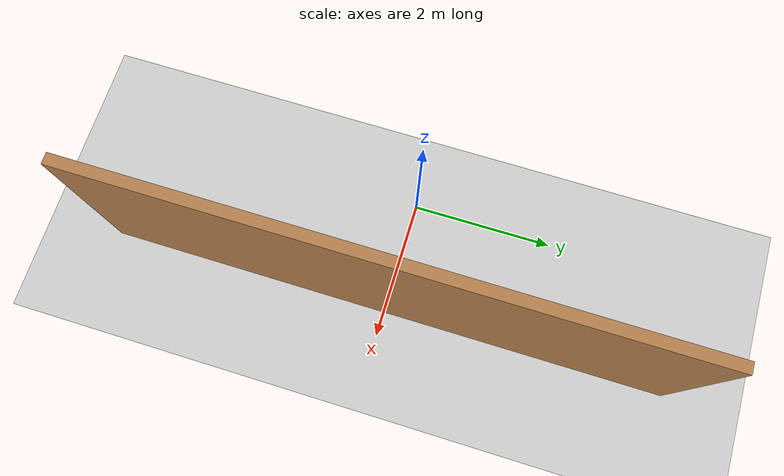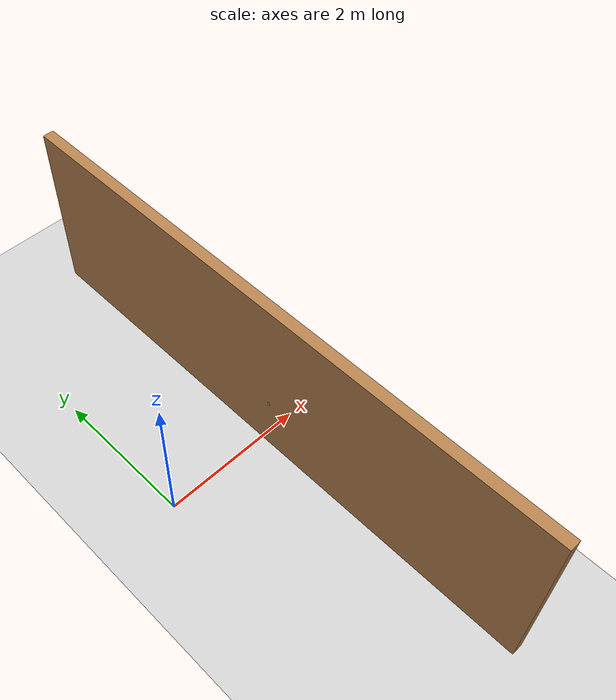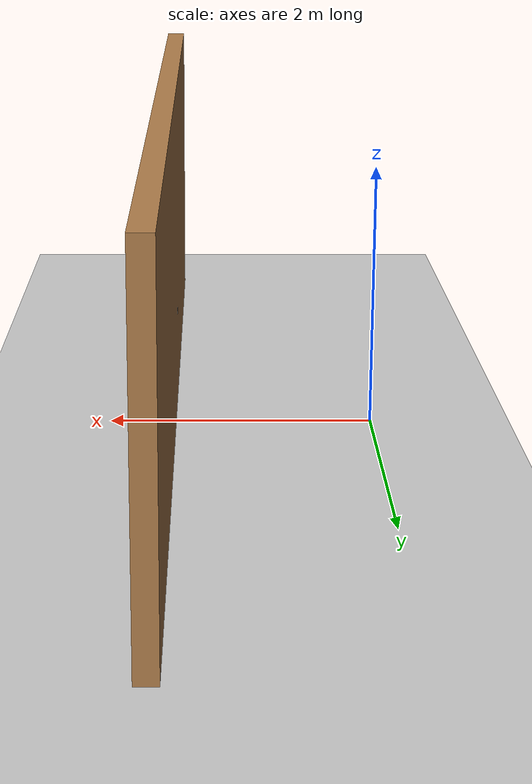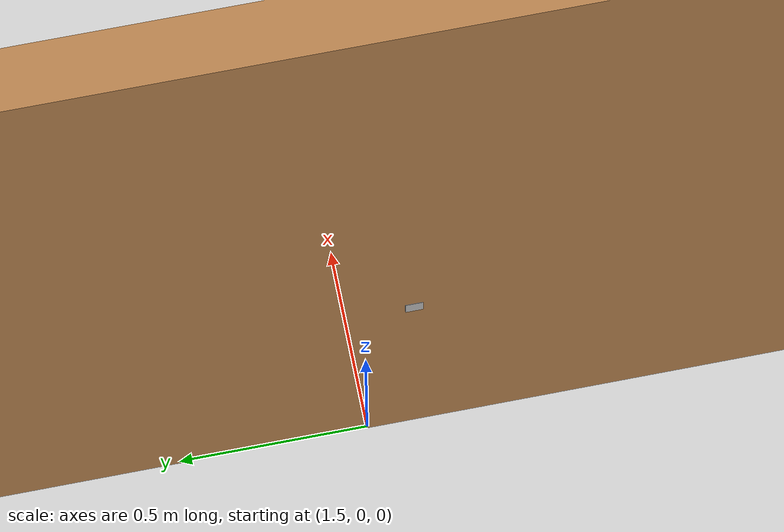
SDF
<sdf version="1.6">
 <world name="default">
  <light name="sun" type="directional">
   <pose>0 0 10 0 -0 0</pose>
   <diffuse>0.8 0.8 0.8 1</diffuse>
   <specular>0.2 0.2 0.2 1</specular>
   <attenuation>
    <range>1000</range>
    <constant>0.9</constant>
    <linear>0.01</linear>
    <quadratic>0.001</quadratic>
   </attenuation>
   <direction>-0.5 0.1 -0.9</direction>
  </light>
  <model name="ground_plane">
   <static>1</static>
   <link name="link">
    <collision name="collision">
     <geometry><plane><normal>0 0 1</normal><size>100 100</size></plane></geometry>
     <surface><friction><ode><mu>100</mu><mu2>50</mu2></ode></friction></surface>
    </collision>
    <visual name="visual">
     <cast_shadows>0</cast_shadows>
     <geometry><plane><normal>0 0 1</normal><size>100 100</size></plane></geometry>
     <material>
      <script><uri>file://media/materials/scripts/gazebo.material</uri><name>Gazebo/Grey</name></script>
     </material>
    </visual>
   </link>
  </model>
  <gravity>0 0 -9.8</gravity>
  <magnetic_field>6e-06 2.3e-05 -4.2e-05</magnetic_field>
  <atmosphere type="adiabatic"/>
  <physics name="default_physics" default="0" type="ode">
   <max_step_size>0.001</max_step_size>
   <real_time_factor>1</real_time_factor>
   <real_time_update_rate>1000</real_time_update_rate>
  </physics>
  <scene><ambient>0.4 0.4 0.4 1</ambient><background>0.7 0.7 0.7 1</background><shadows>1</shadows></scene>
  <audio><device>default</device></audio>
  <spherical_coordinates>
   <surface_model>EARTH_WGS84</surface_model>
   <latitude_deg>0</latitude_deg>
   <longitude_deg>0</longitude_deg>
   <elevation>0</elevation>
   <heading_deg>0</heading_deg>
  </spherical_coordinates>
  <model name="wood_wall_8m">
   <pose>1.57077 0 0 0 0 -1.5708</pose>
   <link name="Wall_2">
    <collision name="Wall_2_Collision">
     <geometry><box><size>8 0.15 2.5</size></box></geometry>
     <pose>0 0 1.25 0 -0 0</pose>
    </collision>
    <visual name="Wall_2_Visual">
     <pose>0 0 1.25 0 -0 0</pose>
     <geometry><box><size>8 0.15 2.5</size></box></geometry>
     <material>
      <script><uri>file://media/materials/scripts/gazebo.material</uri><name>Gazebo/Wood</name></script>
      <ambient>1 1 1 1</ambient>
     </material>
     <meta><layer>0</layer></meta>
    </visual>
   </link>
   <static>1</static>
  </model>
  <light name="user_spot_light_1" type="spot">
   <pose>0.023521 0.01554 1 0 -0 0</pose>
   <diffuse>0.5 0.5 0.5 1</diffuse>
   <specular>0.1 0.1 0.1 1</specular>
   <direction>0 0 -1</direction>
   <attenuation>
    <range>20</range>
    <constant>0.5</constant>
    <linear>0.01</linear>
    <quadratic>0.001</quadratic>
   </attenuation>
   <cast_shadows>0</cast_shadows>
   <spot><inner_angle>0.6</inner_angle><outer_angle>1</outer_angle><falloff>1</falloff></spot>
  </light>
  <model name="AR_marker_01">
   <static>1</static>
   <link name="link">
    <visual name="visual">
     <geometry><box><size>0.045 0.045 0.001</size></box></geometry>
     <material>
      <script>
       <uri>model://AR_Marker_01/materials/scripts</uri>
       <uri>model://AR_Marker_01/materials/textures</uri>
       <name>AR_Marker_01/Material</name>
      </script>
     </material>
    </visual>
   </link>
   <pose>1.4846 -0.122227 0.852897 0 -1.55197 0</pose>
  </model>
 </world>
</sdf>
